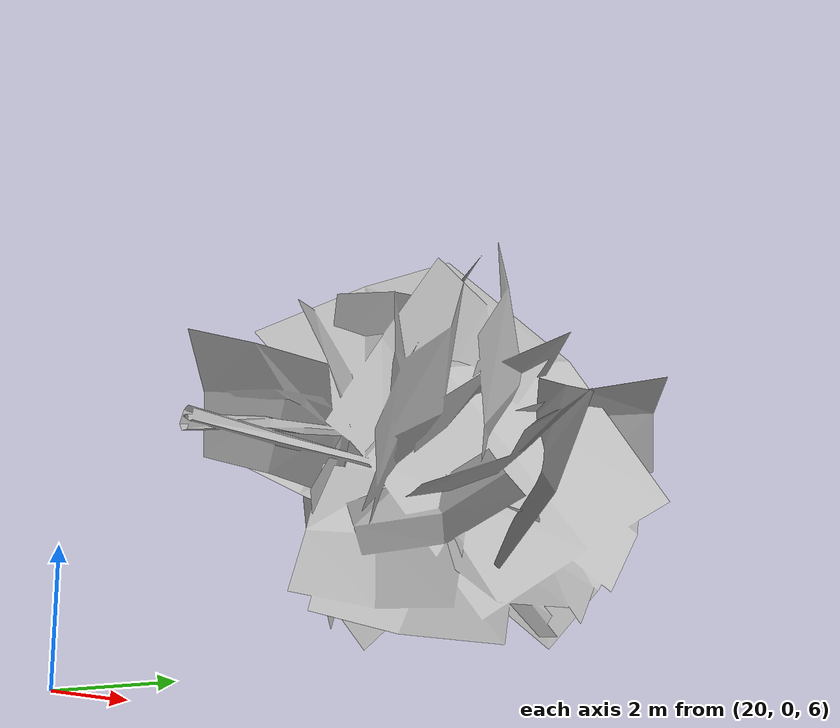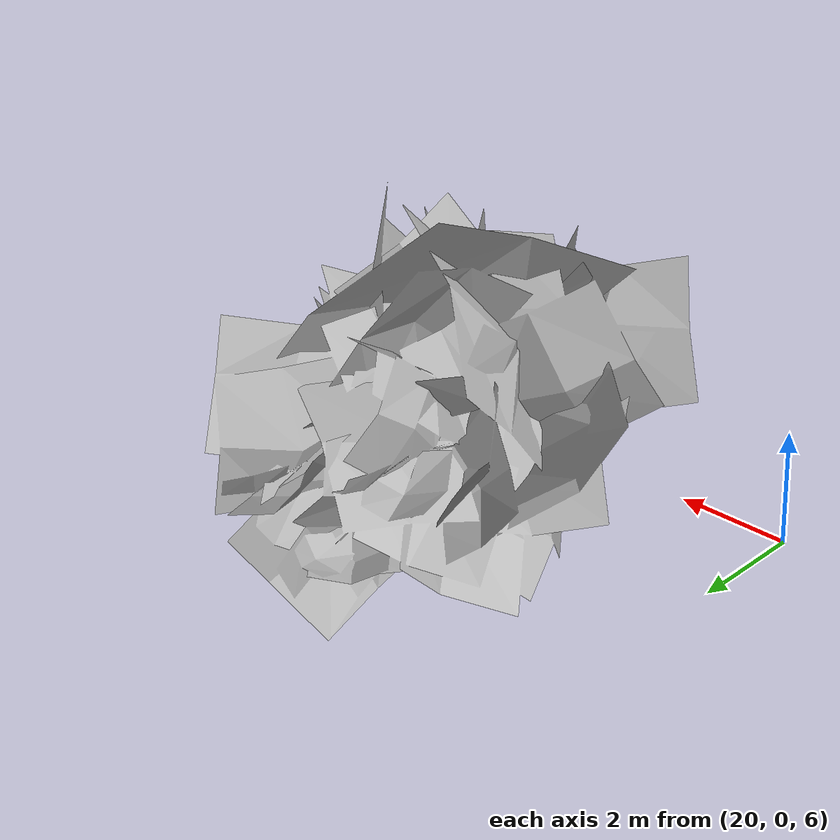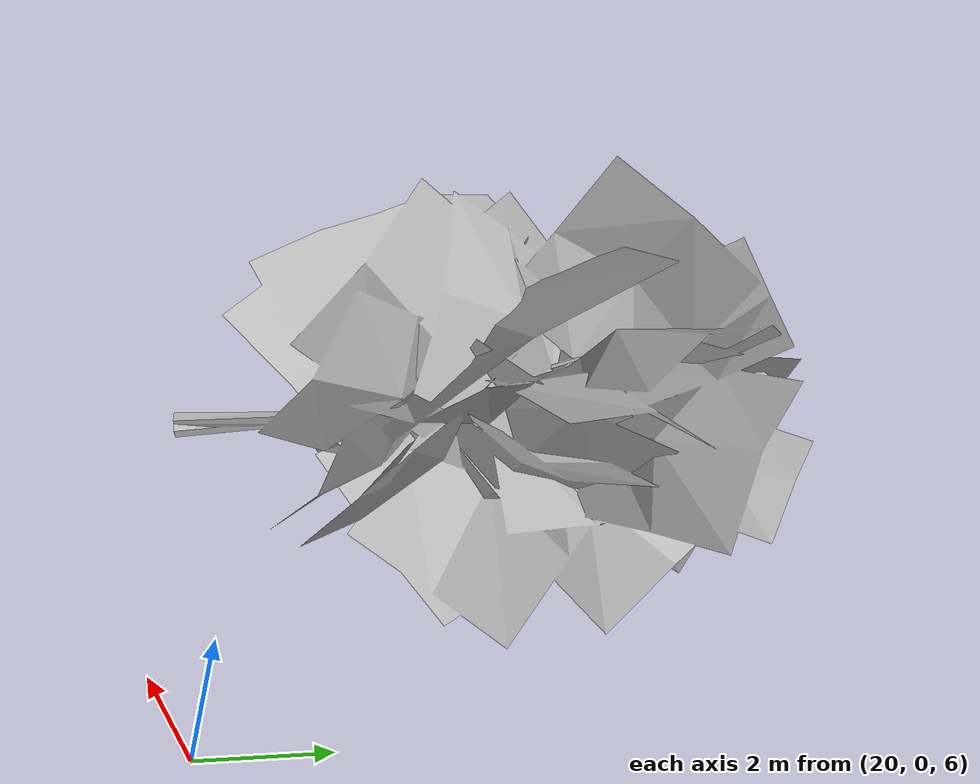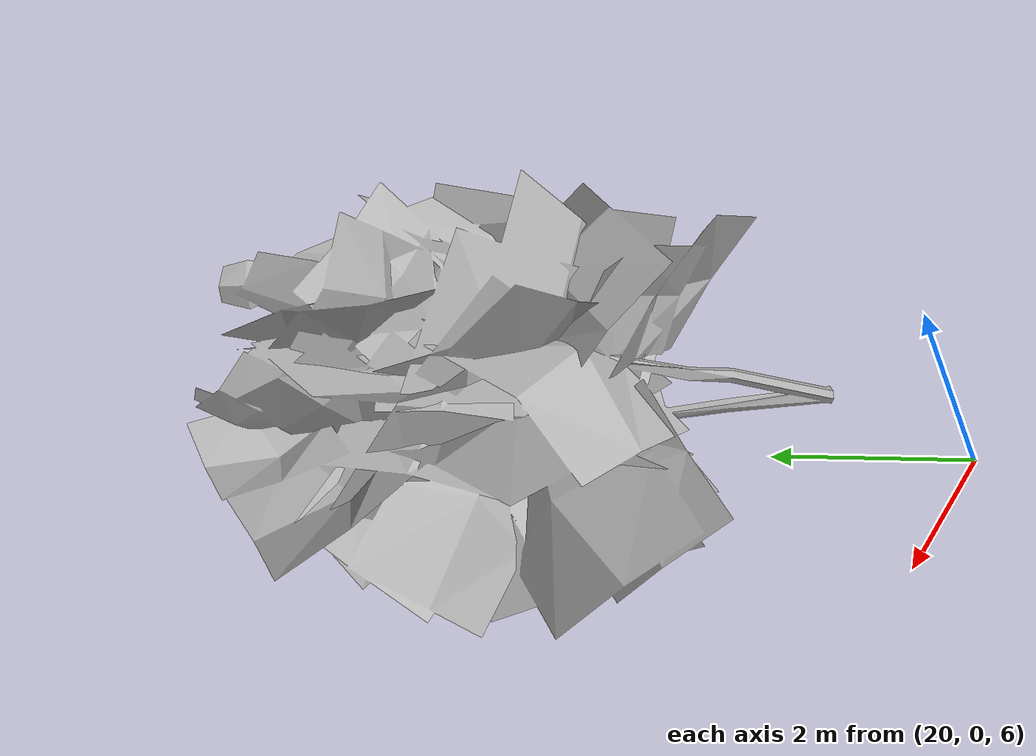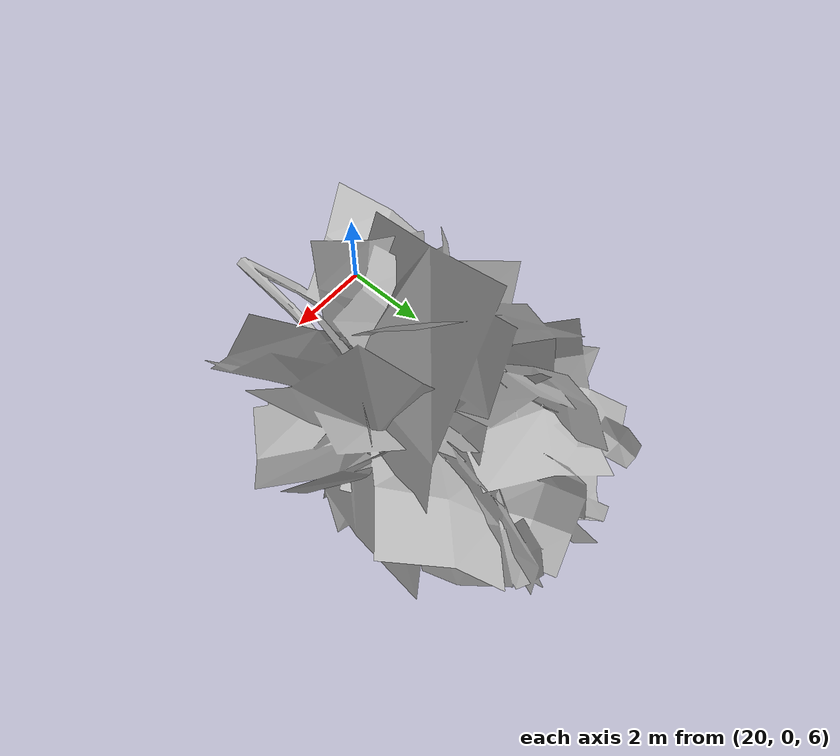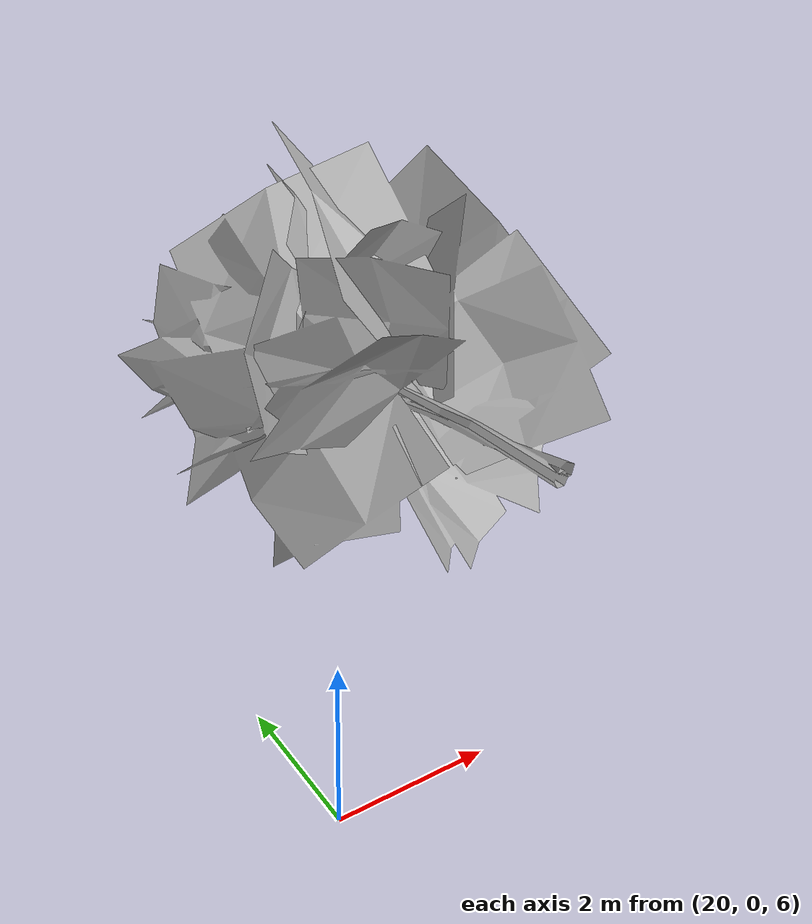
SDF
<?xml version="1.0" ?>
<sdf version="1.9">
  <model name="tree_03_2">
    <static>true</static>
    <link name="link">
      <collision name="collision">
        <pose>0 0 3.0 0 0 0</pose>
        <geometry>
          <box>
            <size>1.5 1.5 6.0</size>
          </box>
        </geometry>
      </collision>
      <visual name="visual">
        <geometry>
          <mesh>
            <uri>model://tree_03_2/meshes/Tree-03-2.obj</uri>
          </mesh>
        </geometry>
      </visual>
    </link>
  </model>
</sdf>
